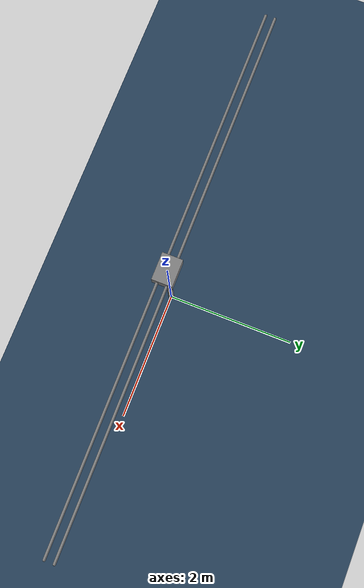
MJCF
<mujoco model="doublecartpole_scene">
  <!-- Model that includes the model along with scene details like lighting and a ground. -->
  <include file="double_cart_pole.xml"/>

  <visual>
    <headlight diffuse="0.6 0.6 0.6" ambient="0.3 0.3 0.3" specular="0 0 0"/>
    <rgba haze="0.15 0.25 0.35 1"/>
    <global azimuth="150" elevation="-20"/>
  </visual>

  <asset>
    <texture type="skybox" builtin="gradient" rgb1="0.3 0.5 0.7" rgb2="0 0 0" width="512" height="3072"/>
    <texture type="2d" name="groundplane" builtin="checker" mark="edge" rgb1="0.2 0.3 0.4" rgb2="0.1 0.2 0.3"
      markrgb="0.8 0.8 0.8" width="300" height="300"/>
    <material name="groundplane" texture="groundplane" texuniform="true" texrepeat="5 5" reflectance="0.2"/>
  </asset>

  <worldbody>
    <light pos="0 0 6" dir="0 0 -1" directional="false"/>
    <geom name="floor" pos="0 0 -0.05" size="0 0 .125" type="plane" material="groundplane" conaffinity="15" condim="3"/>
  </worldbody>

</mujoco>

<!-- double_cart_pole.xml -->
<mujoco model="doublecartpole">
  <option timestep="0.01" iterations="1" ls_iterations="5">
    <flag contact="disable"/>
  </option>

  <default>
    <default class="pole">
      <joint type="hinge" axis="0 1 0"  damping="2e-6"/>
      <geom type="capsule" fromto="0 0 -1 0 0 0" size="0.045" mass=".1"/>
    </default>
  </default>

  <worldbody>
    <camera name="fixed" pos="0 -8 2" zaxis="0 -1 0"/>
    <camera name="lookatcart" mode="targetbody" target="cart" pos="0 -2 2"/>
    <geom name="rail1" type="capsule" pos="0  .07 2" zaxis="1 0 0" size="0.02 4"/>
    <geom name="rail2" type="capsule" pos="0 -.07 2" zaxis="1 0 0" size="0.02 4"/>
    <body name="cart" pos="0 0 2">
      <joint name="slider" type="slide" limited="true" axis="1 0 0" range="-3.8 3.8" solreflimit=".08 1" damping="1.0e-4"/>
      <geom name="cart" type="box" size="0.2 0.15 0.1" mass="1"/>
      <body name="pole_1" childclass="pole">
        <joint name="hinge_1" damping="1.0e-4"/>
        <geom name="pole_1"/>
        <body name="pole_2" childclass="pole" pos="0 0 -1">
          <joint name="hinge_2" damping="1.0e-4"/>
          <geom name="pole_2"/>
          <site name="tip" pos="0 0 -1"/>
        </body>
      </body>
    </body>
  </worldbody>

  <actuator>
    <motor name="slide" joint="slider" gear="20" ctrllimited="true" ctrlrange="-1 1" />
  </actuator>
</mujoco>
